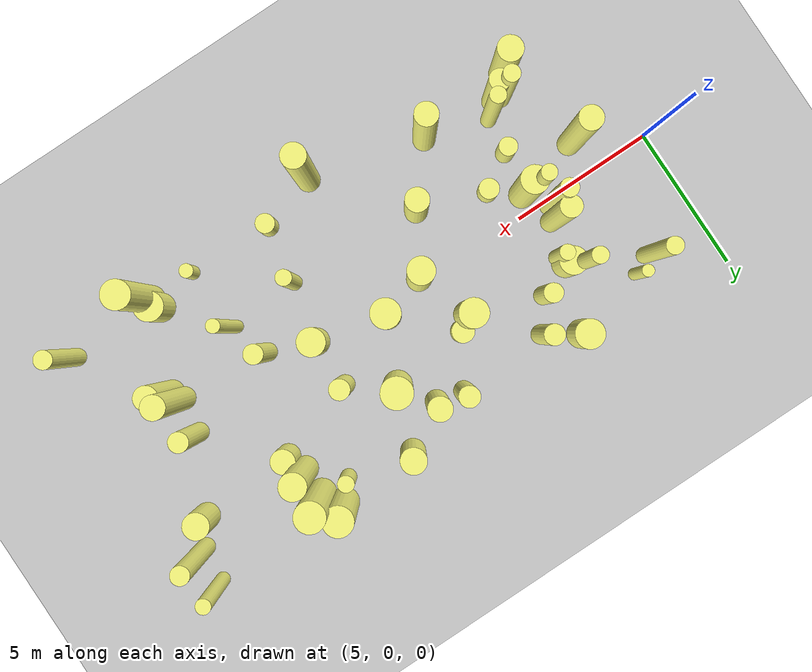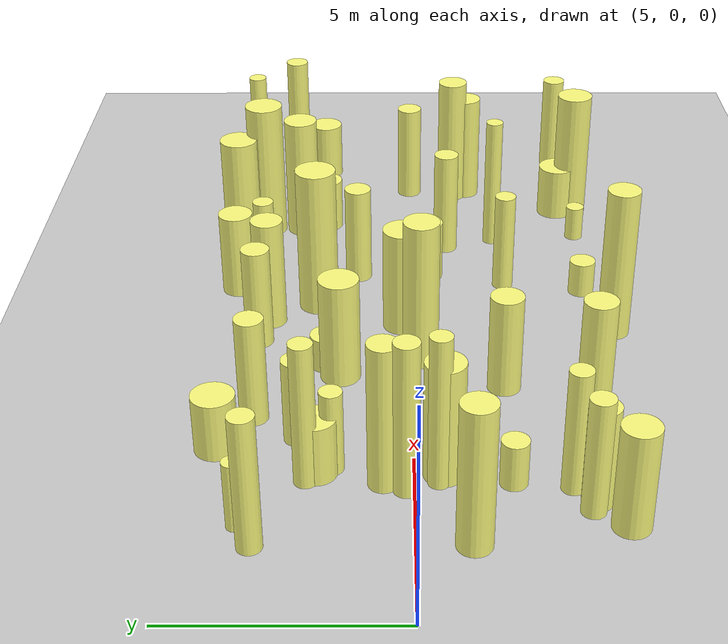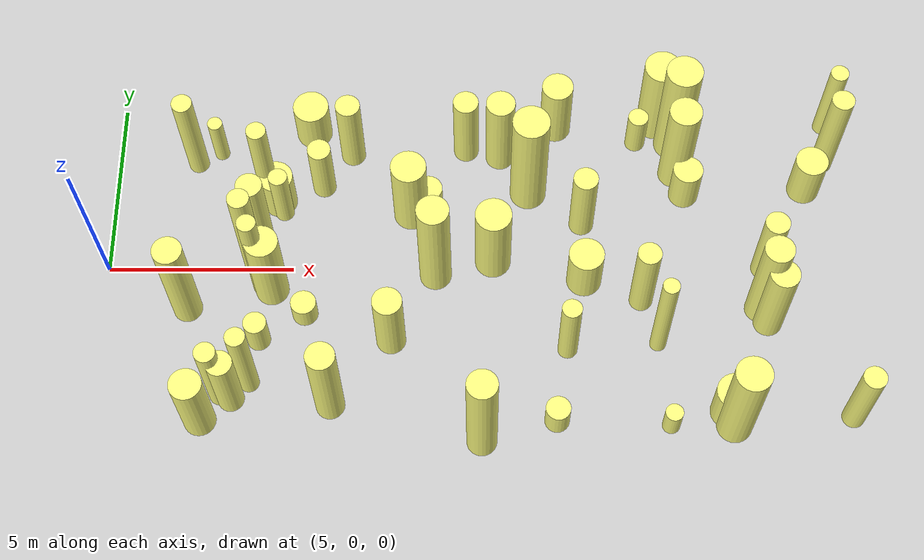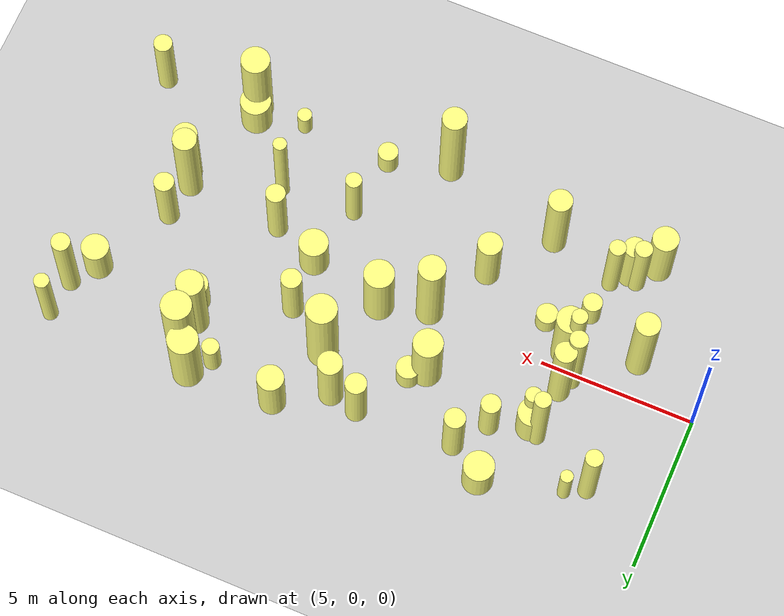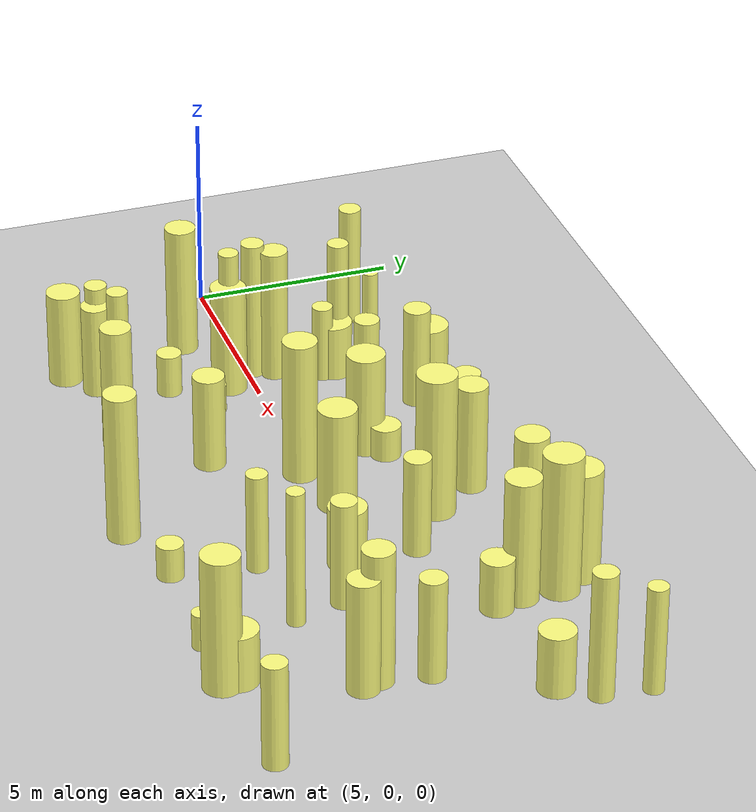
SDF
<sdf version="1.4">
 <world name="default">
  <include><uri>model://ground_plane</uri></include>
  <include><uri>model://sun</uri></include>
  <model name="forest">
   <static>true</static>
   <link name="cylinder2">
    <pose>17.06263582477831 -4.398450498447433 0.45323441343859916 0 0 0</pose>
    <visual name="visual">
     <geometry>
      <cylinder><radius>0.327171497015727</radius><length>0.9064688268771983</length></cylinder>
     </geometry>
     <material>
      <ambient>0.6 0.6 0.6 1</ambient>
      <diffuse>1 1 0.5 1</diffuse>
      <specular>0 0 0</specular>
      <emissive>0 0 0 1</emissive>
     </material>
    </visual>
    <collision name="collision">
     <geometry>
      <cylinder><radius>0.327171497015727</radius><length>0.9064688268771983</length></cylinder>
     </geometry>
     <max_contacts>0</max_contacts>
    </collision>
   </link>
   <link name="cylinder4">
    <pose>8.56006599126416 -3.777886421730795 1.21136380154914 0 0 0</pose>
    <visual name="visual">
     <geometry>
      <cylinder><radius>0.34854121331254384</radius><length>2.42272760309828</length></cylinder>
     </geometry>
     <material>
      <ambient>0.6 0.6 0.6 1</ambient>
      <diffuse>1 1 0.5 1</diffuse>
      <specular>0 0 0</specular>
      <emissive>0 0 0 1</emissive>
     </material>
    </visual>
    <collision name="collision">
     <geometry>
      <cylinder><radius>0.34854121331254384</radius><length>2.42272760309828</length></cylinder>
     </geometry>
     <max_contacts>0</max_contacts>
    </collision>
   </link>
   <link name="cylinder5">
    <pose>21.548684478168738 -4.1583525839549775 0.7080071671654142 0 0 0</pose>
    <visual name="visual">
     <geometry>
      <cylinder><radius>0.49849775153081066</radius><length>1.4160143343308285</length></cylinder>
     </geometry>
     <material>
      <ambient>0.6 0.6 0.6 1</ambient>
      <diffuse>1 1 0.5 1</diffuse>
      <specular>0 0 0</specular>
      <emissive>0 0 0 1</emissive>
     </material>
    </visual>
    <collision name="collision">
     <geometry>
      <cylinder><radius>0.49849775153081066</radius><length>1.4160143343308285</length></cylinder>
     </geometry>
     <max_contacts>0</max_contacts>
    </collision>
   </link>
   <link name="cylinder7">
    <pose>10.398539037109742 4.321085919349361 0.7088886732083374 0 0 0</pose>
    <visual name="visual">
     <geometry>
      <cylinder><radius>0.4912446520581456</radius><length>1.4177773464166747</length></cylinder>
     </geometry>
     <material>
      <ambient>0.6 0.6 0.6 1</ambient>
      <diffuse>1 1 0.5 1</diffuse>
      <specular>0 0 0</specular>
      <emissive>0 0 0 1</emissive>
     </material>
    </visual>
    <collision name="collision">
     <geometry>
      <cylinder><radius>0.4912446520581456</radius><length>1.4177773464166747</length></cylinder>
     </geometry>
     <max_contacts>0</max_contacts>
    </collision>
   </link>
   <link name="cylinder12">
    <pose>9.541805166291901 2.0957269221761967 0.7181970877184152 0 0 0</pose>
    <visual name="visual">
     <geometry>
      <cylinder><radius>0.46674660172449084</radius><length>1.4363941754368303</length></cylinder>
     </geometry>
     <material>
      <ambient>0.6 0.6 0.6 1</ambient>
      <diffuse>1 1 0.5 1</diffuse>
      <specular>0 0 0</specular>
      <emissive>0 0 0 1</emissive>
     </material>
    </visual>
    <collision name="collision">
     <geometry>
      <cylinder><radius>0.46674660172449084</radius><length>1.4363941754368303</length></cylinder>
     </geometry>
     <max_contacts>0</max_contacts>
    </collision>
   </link>
   <link name="cylinder13">
    <pose>11.161338259415885 -3.963218649585535 1.6466238924237384 0 0 0</pose>
    <visual name="visual">
     <geometry>
      <cylinder><radius>0.3831152462688655</radius><length>3.293247784847477</length></cylinder>
     </geometry>
     <material>
      <ambient>0.6 0.6 0.6 1</ambient>
      <diffuse>1 1 0.5 1</diffuse>
      <specular>0 0 0</specular>
      <emissive>0 0 0 1</emissive>
     </material>
    </visual>
    <collision name="collision">
     <geometry>
      <cylinder><radius>0.3831152462688655</radius><length>3.293247784847477</length></cylinder>
     </geometry>
     <max_contacts>0</max_contacts>
    </collision>
   </link>
   <link name="cylinder18">
    <pose>9.46966332199478 -0.6176820948401032 1.437163118635355 0 0 0</pose>
    <visual name="visual">
     <geometry>
      <cylinder><radius>0.44921465185849613</radius><length>2.87432623727071</length></cylinder>
     </geometry>
     <material>
      <ambient>0.6 0.6 0.6 1</ambient>
      <diffuse>1 1 0.5 1</diffuse>
      <specular>0 0 0</specular>
      <emissive>0 0 0 1</emissive>
     </material>
    </visual>
    <collision name="collision">
     <geometry>
      <cylinder><radius>0.44921465185849613</radius><length>2.87432623727071</length></cylinder>
     </geometry>
     <max_contacts>0</max_contacts>
    </collision>
   </link>
   <link name="cylinder21">
    <pose>24.766122047103792 -4.314615456266133 1.3455922960052131 0 0 0</pose>
    <visual name="visual">
     <geometry>
      <cylinder><radius>0.3020595572088285</radius><length>2.6911845920104263</length></cylinder>
     </geometry>
     <material>
      <ambient>0.6 0.6 0.6 1</ambient>
      <diffuse>1 1 0.5 1</diffuse>
      <specular>0 0 0</specular>
      <emissive>0 0 0 1</emissive>
     </material>
    </visual>
    <collision name="collision">
     <geometry>
      <cylinder><radius>0.3020595572088285</radius><length>2.6911845920104263</length></cylinder>
     </geometry>
     <max_contacts>0</max_contacts>
    </collision>
   </link>
   <link name="cylinder23">
    <pose>7.789420767503266 -4.3731671185979435 1.2543017956717983 0 0 0</pose>
    <visual name="visual">
     <geometry>
      <cylinder><radius>0.42235897343363227</radius><length>2.5086035913435967</length></cylinder>
     </geometry>
     <material>
      <ambient>0.6 0.6 0.6 1</ambient>
      <diffuse>1 1 0.5 1</diffuse>
      <specular>0 0 0</specular>
      <emissive>0 0 0 1</emissive>
     </material>
    </visual>
    <collision name="collision">
     <geometry>
      <cylinder><radius>0.42235897343363227</radius><length>2.5086035913435967</length></cylinder>
     </geometry>
     <max_contacts>0</max_contacts>
    </collision>
   </link>
   <link name="cylinder26">
    <pose>7.193458350136424 3.3149631198163227 1.6025751114651041 0 0 0</pose>
    <visual name="visual">
     <geometry>
      <cylinder><radius>0.278477207770003</radius><length>3.2051502229302082</length></cylinder>
     </geometry>
     <material>
      <ambient>0.6 0.6 0.6 1</ambient>
      <diffuse>1 1 0.5 1</diffuse>
      <specular>0 0 0</specular>
      <emissive>0 0 0 1</emissive>
     </material>
    </visual>
    <collision name="collision">
     <geometry>
      <cylinder><radius>0.278477207770003</radius><length>3.2051502229302082</length></cylinder>
     </geometry>
     <max_contacts>0</max_contacts>
    </collision>
   </link>
   <link name="cylinder34">
    <pose>15.107928935892687 -4.964952932846998 1.9565724542738754 0 0 0</pose>
    <visual name="visual">
     <geometry>
      <cylinder><radius>0.3967756741619876</radius><length>3.9131449085477508</length></cylinder>
     </geometry>
     <material>
      <ambient>0.6 0.6 0.6 1</ambient>
      <diffuse>1 1 0.5 1</diffuse>
      <specular>0 0 0</specular>
      <emissive>0 0 0 1</emissive>
     </material>
    </visual>
    <collision name="collision">
     <geometry>
      <cylinder><radius>0.3967756741619876</radius><length>3.9131449085477508</length></cylinder>
     </geometry>
     <max_contacts>0</max_contacts>
    </collision>
   </link>
   <link name="cylinder35">
    <pose>12.706050622001463 -2.1137591758437955 1.2374132726244835 0 0 0</pose>
    <visual name="visual">
     <geometry>
      <cylinder><radius>0.3934762514498227</radius><length>2.474826545248967</length></cylinder>
     </geometry>
     <material>
      <ambient>0.6 0.6 0.6 1</ambient>
      <diffuse>1 1 0.5 1</diffuse>
      <specular>0 0 0</specular>
      <emissive>0 0 0 1</emissive>
     </material>
    </visual>
    <collision name="collision">
     <geometry>
      <cylinder><radius>0.3934762514498227</radius><length>2.474826545248967</length></cylinder>
     </geometry>
     <max_contacts>0</max_contacts>
    </collision>
   </link>
   <link name="cylinder36">
    <pose>9.197053254391541 -0.5105110384902511 1.8381948339444554 0 0 0</pose>
    <visual name="visual">
     <geometry>
      <cylinder><radius>0.24995701619388372</radius><length>3.6763896678889108</length></cylinder>
     </geometry>
     <material>
      <ambient>0.6 0.6 0.6 1</ambient>
      <diffuse>1 1 0.5 1</diffuse>
      <specular>0 0 0</specular>
      <emissive>0 0 0 1</emissive>
     </material>
    </visual>
    <collision name="collision">
     <geometry>
      <cylinder><radius>0.24995701619388372</radius><length>3.6763896678889108</length></cylinder>
     </geometry>
     <max_contacts>0</max_contacts>
    </collision>
   </link>
   <link name="cylinder44">
    <pose>8.263156415661705 -3.660597588238288 1.413286338722604 0 0 0</pose>
    <visual name="visual">
     <geometry>
      <cylinder><radius>0.2786597882645635</radius><length>2.826572677445208</length></cylinder>
     </geometry>
     <material>
      <ambient>0.6 0.6 0.6 1</ambient>
      <diffuse>1 1 0.5 1</diffuse>
      <specular>0 0 0</specular>
      <emissive>0 0 0 1</emissive>
     </material>
    </visual>
    <collision name="collision">
     <geometry>
      <cylinder><radius>0.2786597882645635</radius><length>2.826572677445208</length></cylinder>
     </geometry>
     <max_contacts>0</max_contacts>
    </collision>
   </link>
   <link name="cylinder49">
    <pose>24.801665515858105 4.49977297706133 1.3858517608997916 0 0 0</pose>
    <visual name="visual">
     <geometry>
      <cylinder><radius>0.2472381237248637</radius><length>2.771703521799583</length></cylinder>
     </geometry>
     <material>
      <ambient>0.6 0.6 0.6 1</ambient>
      <diffuse>1 1 0.5 1</diffuse>
      <specular>0 0 0</specular>
      <emissive>0 0 0 1</emissive>
     </material>
    </visual>
    <collision name="collision">
     <geometry>
      <cylinder><radius>0.2472381237248637</radius><length>2.771703521799583</length></cylinder>
     </geometry>
     <max_contacts>0</max_contacts>
    </collision>
   </link>
   <link name="cylinder52">
    <pose>21.650200436551422 -4.555256958221218 1.7613387658371924 0 0 0</pose>
    <visual name="visual">
     <geometry>
      <cylinder><radius>0.4658754994408512</radius><length>3.522677531674385</length></cylinder>
     </geometry>
     <material>
      <ambient>0.6 0.6 0.6 1</ambient>
      <diffuse>1 1 0.5 1</diffuse>
      <specular>0 0 0</specular>
      <emissive>0 0 0 1</emissive>
     </material>
    </visual>
    <collision name="collision">
     <geometry>
      <cylinder><radius>0.4658754994408512</radius><length>3.522677531674385</length></cylinder>
     </geometry>
     <max_contacts>0</max_contacts>
    </collision>
   </link>
   <link name="cylinder55">
    <pose>15.422336889515954 0.2314547111160099 1.3526220414228327 0 0 0</pose>
    <visual name="visual">
     <geometry>
      <cylinder><radius>0.48403704096018346</radius><length>2.7052440828456654</length></cylinder>
     </geometry>
     <material>
      <ambient>0.6 0.6 0.6 1</ambient>
      <diffuse>1 1 0.5 1</diffuse>
      <specular>0 0 0</specular>
      <emissive>0 0 0 1</emissive>
     </material>
    </visual>
    <collision name="collision">
     <geometry>
      <cylinder><radius>0.48403704096018346</radius><length>2.7052440828456654</length></cylinder>
     </geometry>
     <max_contacts>0</max_contacts>
    </collision>
   </link>
   <link name="cylinder62">
    <pose>24.074929609088365 2.455257945444968 0.7917986931664066 0 0 0</pose>
    <visual name="visual">
     <geometry>
      <cylinder><radius>0.44242249636283737</radius><length>1.5835973863328132</length></cylinder>
     </geometry>
     <material>
      <ambient>0.6 0.6 0.6 1</ambient>
      <diffuse>1 1 0.5 1</diffuse>
      <specular>0 0 0</specular>
      <emissive>0 0 0 1</emissive>
     </material>
    </visual>
    <collision name="collision">
     <geometry>
      <cylinder><radius>0.44242249636283737</radius><length>1.5835973863328132</length></cylinder>
     </geometry>
     <max_contacts>0</max_contacts>
    </collision>
   </link>
   <link name="cylinder63">
    <pose>9.247966340007231 2.3079750903580623 1.7350777993963646 0 0 0</pose>
    <visual name="visual">
     <geometry>
      <cylinder><radius>0.2631270301393606</radius><length>3.4701555987927293</length></cylinder>
     </geometry>
     <material>
      <ambient>0.6 0.6 0.6 1</ambient>
      <diffuse>1 1 0.5 1</diffuse>
      <specular>0 0 0</specular>
      <emissive>0 0 0 1</emissive>
     </material>
    </visual>
    <collision name="collision">
     <geometry>
      <cylinder><radius>0.2631270301393606</radius><length>3.4701555987927293</length></cylinder>
     </geometry>
     <max_contacts>0</max_contacts>
    </collision>
   </link>
   <link name="cylinder65">
    <pose>13.871596494222402 -0.19119563457668942 1.8703376088485602 0 0 0</pose>
    <visual name="visual">
     <geometry>
      <cylinder><radius>0.4290102784188742</radius><length>3.7406752176971203</length></cylinder>
     </geometry>
     <material>
      <ambient>0.6 0.6 0.6 1</ambient>
      <diffuse>1 1 0.5 1</diffuse>
      <specular>0 0 0</specular>
      <emissive>0 0 0 1</emissive>
     </material>
    </visual>
    <collision name="collision">
     <geometry>
      <cylinder><radius>0.4290102784188742</radius><length>3.7406752176971203</length></cylinder>
     </geometry>
     <max_contacts>0</max_contacts>
    </collision>
   </link>
   <link name="cylinder69">
    <pose>9.17107704775674 0.659171468935746 1.7626052152552854 0 0 0</pose>
    <visual name="visual">
     <geometry>
      <cylinder><radius>0.3464923637314986</radius><length>3.5252104305105707</length></cylinder>
     </geometry>
     <material>
      <ambient>0.6 0.6 0.6 1</ambient>
      <diffuse>1 1 0.5 1</diffuse>
      <specular>0 0 0</specular>
      <emissive>0 0 0 1</emissive>
     </material>
    </visual>
    <collision name="collision">
     <geometry>
      <cylinder><radius>0.3464923637314986</radius><length>3.5252104305105707</length></cylinder>
     </geometry>
     <max_contacts>0</max_contacts>
    </collision>
   </link>
   <link name="cylinder71">
    <pose>8.951110624734746 0.18288542143831954 1.8474459536690033 0 0 0</pose>
    <visual name="visual">
     <geometry>
      <cylinder><radius>0.2881871927064712</radius><length>3.6948919073380067</length></cylinder>
     </geometry>
     <material>
      <ambient>0.6 0.6 0.6 1</ambient>
      <diffuse>1 1 0.5 1</diffuse>
      <specular>0 0 0</specular>
      <emissive>0 0 0 1</emissive>
     </material>
    </visual>
    <collision name="collision">
     <geometry>
      <cylinder><radius>0.2881871927064712</radius><length>3.6948919073380067</length></cylinder>
     </geometry>
     <max_contacts>0</max_contacts>
    </collision>
   </link>
   <link name="cylinder75">
    <pose>20.017779676267693 4.605993104705767 1.4723593760647238 0 0 0</pose>
    <visual name="visual">
     <geometry>
      <cylinder><radius>0.49233976486572634</radius><length>2.9447187521294476</length></cylinder>
     </geometry>
     <material>
      <ambient>0.6 0.6 0.6 1</ambient>
      <diffuse>1 1 0.5 1</diffuse>
      <specular>0 0 0</specular>
      <emissive>0 0 0 1</emissive>
     </material>
    </visual>
    <collision name="collision">
     <geometry>
      <cylinder><radius>0.49233976486572634</radius><length>2.9447187521294476</length></cylinder>
     </geometry>
     <max_contacts>0</max_contacts>
    </collision>
   </link>
   <link name="cylinder76">
    <pose>9.190356736833984 -2.0866458817479696 0.5571669222556856 0 0 0</pose>
    <visual name="visual">
     <geometry>
      <cylinder><radius>0.31088977075907775</radius><length>1.1143338445113713</length></cylinder>
     </geometry>
     <material>
      <ambient>0.6 0.6 0.6 1</ambient>
      <diffuse>1 1 0.5 1</diffuse>
      <specular>0 0 0</specular>
      <emissive>0 0 0 1</emissive>
     </material>
    </visual>
    <collision name="collision">
     <geometry>
      <cylinder><radius>0.31088977075907775</radius><length>1.1143338445113713</length></cylinder>
     </geometry>
     <max_contacts>0</max_contacts>
    </collision>
   </link>
   <link name="cylinder80">
    <pose>9.008835058464335 -3.320074923911709 1.4929529027202544 0 0 0</pose>
    <visual name="visual">
     <geometry>
      <cylinder><radius>0.26533855556334063</radius><length>2.9859058054405088</length></cylinder>
     </geometry>
     <material>
      <ambient>0.6 0.6 0.6 1</ambient>
      <diffuse>1 1 0.5 1</diffuse>
      <specular>0 0 0</specular>
      <emissive>0 0 0 1</emissive>
     </material>
    </visual>
    <collision name="collision">
     <geometry>
      <cylinder><radius>0.26533855556334063</radius><length>2.9859058054405088</length></cylinder>
     </geometry>
     <max_contacts>0</max_contacts>
    </collision>
   </link>
   <link name="cylinder85">
    <pose>17.209826430712134 4.459289847133046 1.099372296234507 0 0 0</pose>
    <visual name="visual">
     <geometry>
      <cylinder><radius>0.42746186020789534</radius><length>2.198744592469014</length></cylinder>
     </geometry>
     <material>
      <ambient>0.6 0.6 0.6 1</ambient>
      <diffuse>1 1 0.5 1</diffuse>
      <specular>0 0 0</specular>
      <emissive>0 0 0 1</emissive>
     </material>
    </visual>
    <collision name="collision">
     <geometry>
      <cylinder><radius>0.42746186020789534</radius><length>2.198744592469014</length></cylinder>
     </geometry>
     <max_contacts>0</max_contacts>
    </collision>
   </link>
   <link name="cylinder86">
    <pose>20.499917950705047 2.96868910448147 1.6484917631971525 0 0 0</pose>
    <visual name="visual">
     <geometry>
      <cylinder><radius>0.4363697369230573</radius><length>3.296983526394305</length></cylinder>
     </geometry>
     <material>
      <ambient>0.6 0.6 0.6 1</ambient>
      <diffuse>1 1 0.5 1</diffuse>
      <specular>0 0 0</specular>
      <emissive>0 0 0 1</emissive>
     </material>
    </visual>
    <collision name="collision">
     <geometry>
      <cylinder><radius>0.4363697369230573</radius><length>3.296983526394305</length></cylinder>
     </geometry>
     <max_contacts>0</max_contacts>
    </collision>
   </link>
   <link name="cylinder88">
    <pose>22.75999697501335 0.0028801693639204373 1.3269610537219936 0 0 0</pose>
    <visual name="visual">
     <geometry>
      <cylinder><radius>0.3267624126755593</radius><length>2.653922107443987</length></cylinder>
     </geometry>
     <material>
      <ambient>0.6 0.6 0.6 1</ambient>
      <diffuse>1 1 0.5 1</diffuse>
      <specular>0 0 0</specular>
      <emissive>0 0 0 1</emissive>
     </material>
    </visual>
    <collision name="collision">
     <geometry>
      <cylinder><radius>0.3267624126755593</radius><length>2.653922107443987</length></cylinder>
     </geometry>
     <max_contacts>0</max_contacts>
    </collision>
   </link>
   <link name="cylinder89">
    <pose>14.697835011728401 3.7293469845838647 1.2861676101013946 0 0 0</pose>
    <visual name="visual">
     <geometry>
      <cylinder><radius>0.34432914665213976</radius><length>2.572335220202789</length></cylinder>
     </geometry>
     <material>
      <ambient>0.6 0.6 0.6 1</ambient>
      <diffuse>1 1 0.5 1</diffuse>
      <specular>0 0 0</specular>
      <emissive>0 0 0 1</emissive>
     </material>
    </visual>
    <collision name="collision">
     <geometry>
      <cylinder><radius>0.34432914665213976</radius><length>2.572335220202789</length></cylinder>
     </geometry>
     <max_contacts>0</max_contacts>
    </collision>
   </link>
   <link name="cylinder90">
    <pose>16.408397582942342 2.351751275357681 1.900300453954218 0 0 0</pose>
    <visual name="visual">
     <geometry>
      <cylinder><radius>0.4955595350452329</radius><length>3.800600907908436</length></cylinder>
     </geometry>
     <material>
      <ambient>0.6 0.6 0.6 1</ambient>
      <diffuse>1 1 0.5 1</diffuse>
      <specular>0 0 0</specular>
      <emissive>0 0 0 1</emissive>
     </material>
    </visual>
    <collision name="collision">
     <geometry>
      <cylinder><radius>0.4955595350452329</radius><length>3.800600907908436</length></cylinder>
     </geometry>
     <max_contacts>0</max_contacts>
    </collision>
   </link>
   <link name="cylinder95">
    <pose>19.790772346482157 -2.2232061614170604 1.7738508929143098 0 0 0</pose>
    <visual name="visual">
     <geometry>
      <cylinder><radius>0.2192936348509074</radius><length>3.5477017858286195</length></cylinder>
     </geometry>
     <material>
      <ambient>0.6 0.6 0.6 1</ambient>
      <diffuse>1 1 0.5 1</diffuse>
      <specular>0 0 0</specular>
      <emissive>0 0 0 1</emissive>
     </material>
    </visual>
    <collision name="collision">
     <geometry>
      <cylinder><radius>0.2192936348509074</radius><length>3.5477017858286195</length></cylinder>
     </geometry>
     <max_contacts>0</max_contacts>
    </collision>
   </link>
   <link name="cylinder98">
    <pose>22.75417754125396 -1.616463811862313 1.4825238905549905 0 0 0</pose>
    <visual name="visual">
     <geometry>
      <cylinder><radius>0.3890643792713027</radius><length>2.965047781109981</length></cylinder>
     </geometry>
     <material>
      <ambient>0.6 0.6 0.6 1</ambient>
      <diffuse>1 1 0.5 1</diffuse>
      <specular>0 0 0</specular>
      <emissive>0 0 0 1</emissive>
     </material>
    </visual>
    <collision name="collision">
     <geometry>
      <cylinder><radius>0.3890643792713027</radius><length>2.965047781109981</length></cylinder>
     </geometry>
     <max_contacts>0</max_contacts>
    </collision>
   </link>
   <link name="cylinder99">
    <pose>15.638464789603525 3.5203115586575144 1.4196722744036148 0 0 0</pose>
    <visual name="visual">
     <geometry>
      <cylinder><radius>0.3933849166324145</radius><length>2.8393445488072295</length></cylinder>
     </geometry>
     <material>
      <ambient>0.6 0.6 0.6 1</ambient>
      <diffuse>1 1 0.5 1</diffuse>
      <specular>0 0 0</specular>
      <emissive>0 0 0 1</emissive>
     </material>
    </visual>
    <collision name="collision">
     <geometry>
      <cylinder><radius>0.3933849166324145</radius><length>2.8393445488072295</length></cylinder>
     </geometry>
     <max_contacts>0</max_contacts>
    </collision>
   </link>
   <link name="cylinder103">
    <pose>10.752205299591758 2.559153281319423 1.0389563018223726 0 0 0</pose>
    <visual name="visual">
     <geometry>
      <cylinder><radius>0.31567106656140687</radius><length>2.0779126036447453</length></cylinder>
     </geometry>
     <material>
      <ambient>0.6 0.6 0.6 1</ambient>
      <diffuse>1 1 0.5 1</diffuse>
      <specular>0 0 0</specular>
      <emissive>0 0 0 1</emissive>
     </material>
    </visual>
    <collision name="collision">
     <geometry>
      <cylinder><radius>0.31567106656140687</radius><length>2.0779126036447453</length></cylinder>
     </geometry>
     <max_contacts>0</max_contacts>
    </collision>
   </link>
   <link name="cylinder104">
    <pose>17.858833281794546 1.3712048322718786 1.282100540578936 0 0 0</pose>
    <visual name="visual">
     <geometry>
      <cylinder><radius>0.33421818402553355</radius><length>2.564201081157872</length></cylinder>
     </geometry>
     <material>
      <ambient>0.6 0.6 0.6 1</ambient>
      <diffuse>1 1 0.5 1</diffuse>
      <specular>0 0 0</specular>
      <emissive>0 0 0 1</emissive>
     </material>
    </visual>
    <collision name="collision">
     <geometry>
      <cylinder><radius>0.33421818402553355</radius><length>2.564201081157872</length></cylinder>
     </geometry>
     <max_contacts>0</max_contacts>
    </collision>
   </link>
   <link name="cylinder105">
    <pose>17.387917267577762 -2.383164812543488 1.2934346780463517 0 0 0</pose>
    <visual name="visual">
     <geometry>
      <cylinder><radius>0.2619635659705602</radius><length>2.5868693560927034</length></cylinder>
     </geometry>
     <material>
      <ambient>0.6 0.6 0.6 1</ambient>
      <diffuse>1 1 0.5 1</diffuse>
      <specular>0 0 0</specular>
      <emissive>0 0 0 1</emissive>
     </material>
    </visual>
    <collision name="collision">
     <geometry>
      <cylinder><radius>0.2619635659705602</radius><length>2.5868693560927034</length></cylinder>
     </geometry>
     <max_contacts>0</max_contacts>
    </collision>
   </link>
   <link name="cylinder107">
    <pose>7.820405878653077 3.652010200978907 0.818197558185117 0 0 0</pose>
    <visual name="visual">
     <geometry>
      <cylinder><radius>0.20359019699310119</radius><length>1.636395116370234</length></cylinder>
     </geometry>
     <material>
      <ambient>0.6 0.6 0.6 1</ambient>
      <diffuse>1 1 0.5 1</diffuse>
      <specular>0 0 0</specular>
      <emissive>0 0 0 1</emissive>
     </material>
    </visual>
    <collision name="collision">
     <geometry>
      <cylinder><radius>0.20359019699310119</radius><length>1.636395116370234</length></cylinder>
     </geometry>
     <max_contacts>0</max_contacts>
    </collision>
   </link>
   <link name="cylinder110">
    <pose>19.458825053249015 3.9860224811954925 0.6883739465373049 0 0 0</pose>
    <visual name="visual">
     <geometry>
      <cylinder><radius>0.2770081462421856</radius><length>1.3767478930746098</length></cylinder>
     </geometry>
     <material>
      <ambient>0.6 0.6 0.6 1</ambient>
      <diffuse>1 1 0.5 1</diffuse>
      <specular>0 0 0</specular>
      <emissive>0 0 0 1</emissive>
     </material>
    </visual>
    <collision name="collision">
     <geometry>
      <cylinder><radius>0.2770081462421856</radius><length>1.3767478930746098</length></cylinder>
     </geometry>
     <max_contacts>0</max_contacts>
    </collision>
   </link>
   <link name="cylinder111">
    <pose>17.880704072295053 -0.3490991444977256 0.7908327762816453 0 0 0</pose>
    <visual name="visual">
     <geometry>
      <cylinder><radius>0.4724527311026142</radius><length>1.5816655525632906</length></cylinder>
     </geometry>
     <material>
      <ambient>0.6 0.6 0.6 1</ambient>
      <diffuse>1 1 0.5 1</diffuse>
      <specular>0 0 0</specular>
      <emissive>0 0 0 1</emissive>
     </material>
    </visual>
    <collision name="collision">
     <geometry>
      <cylinder><radius>0.4724527311026142</radius><length>1.5816655525632906</length></cylinder>
     </geometry>
     <max_contacts>0</max_contacts>
    </collision>
   </link>
   <link name="cylinder115">
    <pose>24.662664917107797 3.2975481594157525 1.6590604177570611 0 0 0</pose>
    <visual name="visual">
     <geometry>
      <cylinder><radius>0.3043441212318476</radius><length>3.3181208355141223</length></cylinder>
     </geometry>
     <material>
      <ambient>0.6 0.6 0.6 1</ambient>
      <diffuse>1 1 0.5 1</diffuse>
      <specular>0 0 0</specular>
      <emissive>0 0 0 1</emissive>
     </material>
    </visual>
    <collision name="collision">
     <geometry>
      <cylinder><radius>0.3043441212318476</radius><length>3.3181208355141223</length></cylinder>
     </geometry>
     <max_contacts>0</max_contacts>
    </collision>
   </link>
   <link name="cylinder117">
    <pose>13.186837184834161 1.7012284488862246 1.3201313111330668 0 0 0</pose>
    <visual name="visual">
     <geometry>
      <cylinder><radius>0.4765909695833652</radius><length>2.6402626222661336</length></cylinder>
     </geometry>
     <material>
      <ambient>0.6 0.6 0.6 1</ambient>
      <diffuse>1 1 0.5 1</diffuse>
      <specular>0 0 0</specular>
      <emissive>0 0 0 1</emissive>
     </material>
    </visual>
    <collision name="collision">
     <geometry>
      <cylinder><radius>0.4765909695833652</radius><length>2.6402626222661336</length></cylinder>
     </geometry>
     <max_contacts>0</max_contacts>
    </collision>
   </link>
   <link name="cylinder121">
    <pose>19.39561716175041 -0.9451687408460749 1.3980595613891187 0 0 0</pose>
    <visual name="visual">
     <geometry>
      <cylinder><radius>0.3147777930908287</radius><length>2.7961191227782374</length></cylinder>
     </geometry>
     <material>
      <ambient>0.6 0.6 0.6 1</ambient>
      <diffuse>1 1 0.5 1</diffuse>
      <specular>0 0 0</specular>
      <emissive>0 0 0 1</emissive>
     </material>
    </visual>
    <collision name="collision">
     <geometry>
      <cylinder><radius>0.3147777930908287</radius><length>2.7961191227782374</length></cylinder>
     </geometry>
     <max_contacts>0</max_contacts>
    </collision>
   </link>
   <link name="cylinder123">
    <pose>22.556287653980192 -1.2131535109128722 1.7713065615392711 0 0 0</pose>
    <visual name="visual">
     <geometry>
      <cylinder><radius>0.38816740019696994</radius><length>3.5426131230785423</length></cylinder>
     </geometry>
     <material>
      <ambient>0.6 0.6 0.6 1</ambient>
      <diffuse>1 1 0.5 1</diffuse>
      <specular>0 0 0</specular>
      <emissive>0 0 0 1</emissive>
     </material>
    </visual>
    <collision name="collision">
     <geometry>
      <cylinder><radius>0.38816740019696994</radius><length>3.5426131230785423</length></cylinder>
     </geometry>
     <max_contacts>0</max_contacts>
    </collision>
   </link>
   <link name="cylinder127">
    <pose>20.47978891209786 3.935968442206553 1.8660564079671407 0 0 0</pose>
    <visual name="visual">
     <geometry>
      <cylinder><radius>0.48860915071558675</radius><length>3.7321128159342813</length></cylinder>
     </geometry>
     <material>
      <ambient>0.6 0.6 0.6 1</ambient>
      <diffuse>1 1 0.5 1</diffuse>
      <specular>0 0 0</specular>
      <emissive>0 0 0 1</emissive>
     </material>
    </visual>
    <collision name="collision">
     <geometry>
      <cylinder><radius>0.48860915071558675</radius><length>3.7321128159342813</length></cylinder>
     </geometry>
     <max_contacts>0</max_contacts>
    </collision>
   </link>
   <link name="cylinder128">
    <pose>20.01714483263389 -4.530764337159763 0.4636392229699393 0 0 0</pose>
    <visual name="visual">
     <geometry>
      <cylinder><radius>0.23563116920214686</radius><length>0.9272784459398786</length></cylinder>
     </geometry>
     <material>
      <ambient>0.6 0.6 0.6 1</ambient>
      <diffuse>1 1 0.5 1</diffuse>
      <specular>0 0 0</specular>
      <emissive>0 0 0 1</emissive>
     </material>
    </visual>
    <collision name="collision">
     <geometry>
      <cylinder><radius>0.23563116920214686</radius><length>0.9272784459398786</length></cylinder>
     </geometry>
     <max_contacts>0</max_contacts>
    </collision>
   </link>
   <link name="cylinder132">
    <pose>10.386603262888968 -1.3312523375184493 0.37005013298402734 0 0 0</pose>
    <visual name="visual">
     <geometry>
      <cylinder><radius>0.34291441436361353</radius><length>0.7401002659680547</length></cylinder>
     </geometry>
     <material>
      <ambient>0.6 0.6 0.6 1</ambient>
      <diffuse>1 1 0.5 1</diffuse>
      <specular>0 0 0</specular>
      <emissive>0 0 0 1</emissive>
     </material>
    </visual>
    <collision name="collision">
     <geometry>
      <cylinder><radius>0.34291441436361353</radius><length>0.7401002659680547</length></cylinder>
     </geometry>
     <max_contacts>0</max_contacts>
    </collision>
   </link>
   <link name="cylinder137">
    <pose>7.231445957092802 -1.1664690821394053 1.7316612610047237 0 0 0</pose>
    <visual name="visual">
     <geometry>
      <cylinder><radius>0.38919905213770045</radius><length>3.4633225220094475</length></cylinder>
     </geometry>
     <material>
      <ambient>0.6 0.6 0.6 1</ambient>
      <diffuse>1 1 0.5 1</diffuse>
      <specular>0 0 0</specular>
      <emissive>0 0 0 1</emissive>
     </material>
    </visual>
    <collision name="collision">
     <geometry>
      <cylinder><radius>0.38919905213770045</radius><length>3.4633225220094475</length></cylinder>
     </geometry>
     <max_contacts>0</max_contacts>
    </collision>
   </link>
   <link name="cylinder139">
    <pose>20.728333972774315 2.2975484190396864 0.7038590823910018 0 0 0</pose>
    <visual name="visual">
     <geometry>
      <cylinder><radius>0.40700142267865447</radius><length>1.4077181647820036</length></cylinder>
     </geometry>
     <material>
      <ambient>0.6 0.6 0.6 1</ambient>
      <diffuse>1 1 0.5 1</diffuse>
      <specular>0 0 0</specular>
      <emissive>0 0 0 1</emissive>
     </material>
    </visual>
    <collision name="collision">
     <geometry>
      <cylinder><radius>0.40700142267865447</radius><length>1.4077181647820036</length></cylinder>
     </geometry>
     <max_contacts>0</max_contacts>
    </collision>
   </link>
   <link name="cylinder144">
    <pose>13.663708998738144 2.049084992328389 0.4250227956675715 0 0 0</pose>
    <visual name="visual">
     <geometry>
      <cylinder><radius>0.38229454735305085</radius><length>0.850045591335143</length></cylinder>
     </geometry>
     <material>
      <ambient>0.6 0.6 0.6 1</ambient>
      <diffuse>1 1 0.5 1</diffuse>
      <specular>0 0 0</specular>
      <emissive>0 0 0 1</emissive>
     </material>
    </visual>
    <collision name="collision">
     <geometry>
      <cylinder><radius>0.38229454735305085</radius><length>0.850045591335143</length></cylinder>
     </geometry>
     <max_contacts>0</max_contacts>
    </collision>
   </link>
   <link name="cylinder145">
    <pose>9.68246890989706 1.7568562953096194 1.0035929965393173 0 0 0</pose>
    <visual name="visual">
     <geometry>
      <cylinder><radius>0.256487011649875</radius><length>2.0071859930786347</length></cylinder>
     </geometry>
     <material>
      <ambient>0.6 0.6 0.6 1</ambient>
      <diffuse>1 1 0.5 1</diffuse>
      <specular>0 0 0</specular>
      <emissive>0 0 0 1</emissive>
     </material>
    </visual>
    <collision name="collision">
     <geometry>
      <cylinder><radius>0.256487011649875</radius><length>2.0071859930786347</length></cylinder>
     </geometry>
     <max_contacts>0</max_contacts>
    </collision>
   </link>
   <link name="cylinder148">
    <pose>11.5259228660803 3.5931960500218487 1.315467961623649 0 0 0</pose>
    <visual name="visual">
     <geometry>
      <cylinder><radius>0.33453853245035653</radius><length>2.630935923247298</length></cylinder>
     </geometry>
     <material>
      <ambient>0.6 0.6 0.6 1</ambient>
      <diffuse>1 1 0.5 1</diffuse>
      <specular>0 0 0</specular>
      <emissive>0 0 0 1</emissive>
     </material>
    </visual>
    <collision name="collision">
     <geometry>
      <cylinder><radius>0.33453853245035653</radius><length>2.630935923247298</length></cylinder>
     </geometry>
     <max_contacts>0</max_contacts>
    </collision>
   </link>
  </model>
 </world>
</sdf>
